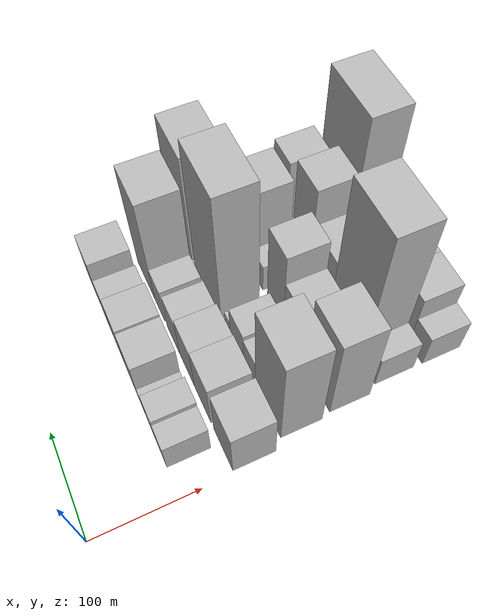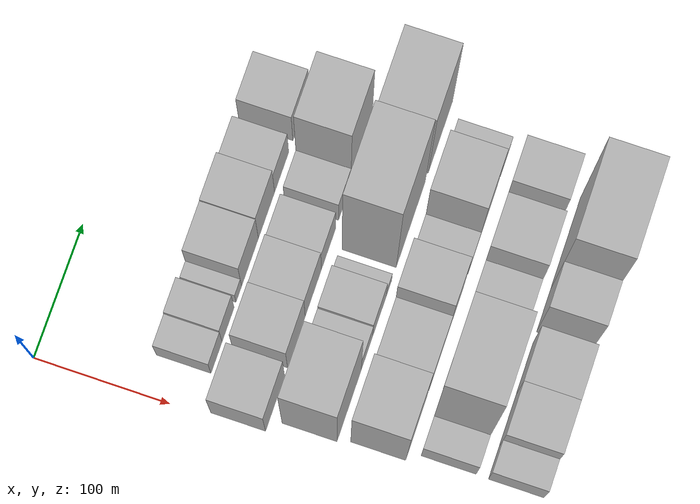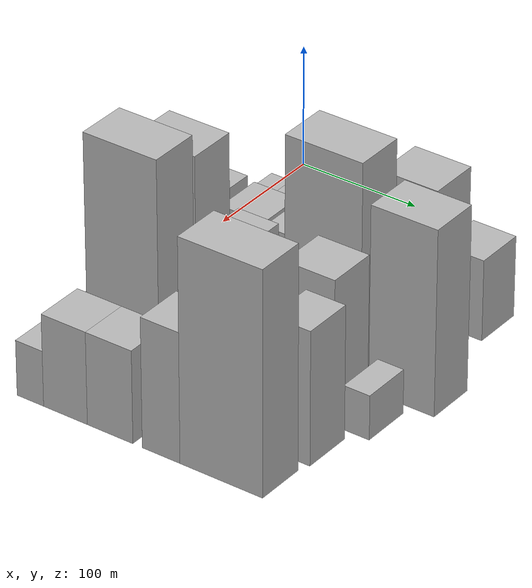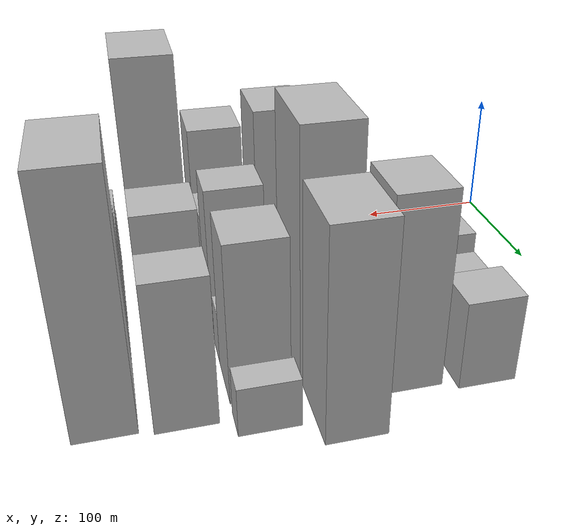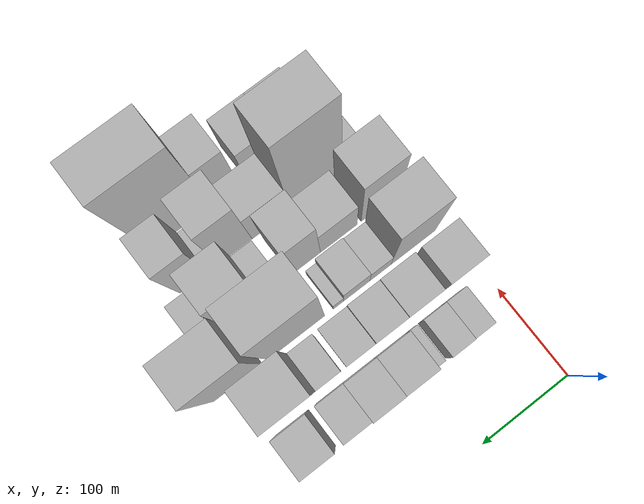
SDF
<sdf version="1.6">
 <world name="default">
  <model name="building_26">
   <static>1</static>
   <pose>100.0000 40.9273 0 0.000000 0.000000 0.000000</pose>
   <link name="link">
    <pose>0 0 21.00 0 0 0</pose>
    <collision name="collision"><geometry><box><size>40.0000 23.2941 42.0000</size></box></geometry></collision>
    <visual name="visual">
     <cast_shadows>0</cast_shadows>
     <geometry><box><size>40.0000 23.2941 42.0000</size></box></geometry>
     <material>
      <script>
       <uri>model://HANNAS_wall/materials/scripts</uri>
       <uri>model://HANNAS_wall/materials/textures</uri>
       <name>vrc/HANNAS_wall</name>
      </script>
     </material>
    </visual>
   </link>
  </model>
  <model name="building_27">
   <static>1</static>
   <pose>100.0000 65.3385 0 0.000000 0.000000 0.000000</pose>
   <link name="link">
    <pose>0 0 24.00 0 0 0</pose>
    <collision name="collision"><geometry><box><size>40.0000 25.5284 48.0000</size></box></geometry></collision>
    <visual name="visual">
     <cast_shadows>0</cast_shadows>
     <geometry><box><size>40.0000 25.5284 48.0000</size></box></geometry>
     <material>
      <script>
       <uri>model://HANNAS_wall/materials/scripts</uri>
       <uri>model://HANNAS_wall/materials/textures</uri>
       <name>vrc/HANNAS_wall</name>
      </script>
     </material>
    </visual>
   </link>
  </model>
  <model name="building_28">
   <static>1</static>
   <pose>100.0000 88.1129 0 0.000000 0.000000 0.000000</pose>
   <link name="link">
    <pose>0 0 13.50 0 0 0</pose>
    <collision name="collision"><geometry><box><size>40.0000 12.0204 27.0000</size></box></geometry></collision>
    <visual name="visual">
     <cast_shadows>0</cast_shadows>
     <geometry><box><size>40.0000 12.0204 27.0000</size></box></geometry>
     <material>
      <script>
       <uri>model://HANNAS_wall/materials/scripts</uri>
       <uri>model://HANNAS_wall/materials/textures</uri>
       <name>vrc/HANNAS_wall</name>
      </script>
     </material>
    </visual>
   </link>
  </model>
  <model name="building_29">
   <static>1</static>
   <pose>100.0000 112.0169 0 0.000000 0.000000 0.000000</pose>
   <link name="link">
    <pose>0 0 33.00 0 0 0</pose>
    <collision name="collision"><geometry><box><size>40.0000 35.7874 66.0000</size></box></geometry></collision>
    <visual name="visual">
     <cast_shadows>0</cast_shadows>
     <geometry><box><size>40.0000 35.7874 66.0000</size></box></geometry>
     <material>
      <script>
       <uri>model://HANNAS_wall/materials/scripts</uri>
       <uri>model://HANNAS_wall/materials/textures</uri>
       <name>vrc/HANNAS_wall</name>
      </script>
     </material>
    </visual>
   </link>
  </model>
  <model name="building_30">
   <static>1</static>
   <pose>100.0000 147.3166 0 0.000000 0.000000 0.000000</pose>
   <link name="link">
    <pose>0 0 34.50 0 0 0</pose>
    <collision name="collision"><geometry><box><size>40.0000 34.8121 69.0000</size></box></geometry></collision>
    <visual name="visual">
     <cast_shadows>0</cast_shadows>
     <geometry><box><size>40.0000 34.8121 69.0000</size></box></geometry>
     <material>
      <script>
       <uri>model://HANNAS_wall/materials/scripts</uri>
       <uri>model://HANNAS_wall/materials/textures</uri>
       <name>vrc/HANNAS_wall</name>
      </script>
     </material>
    </visual>
   </link>
  </model>
  <model name="building_31">
   <static>1</static>
   <pose>100.0000 180.0864 0 0.000000 0.000000 0.000000</pose>
   <link name="link">
    <pose>0 0 27.00 0 0 0</pose>
    <collision name="collision"><geometry><box><size>40.0000 30.7275 54.0000</size></box></geometry></collision>
    <visual name="visual">
     <cast_shadows>0</cast_shadows>
     <geometry><box><size>40.0000 30.7275 54.0000</size></box></geometry>
     <material>
      <script>
       <uri>model://HANNAS_wall/materials/scripts</uri>
       <uri>model://HANNAS_wall/materials/textures</uri>
       <name>vrc/HANNAS_wall</name>
      </script>
     </material>
    </visual>
   </link>
  </model>
  <model name="building_32">
   <static>1</static>
   <pose>100.0000 222.3811 0 0.000000 0.000000 0.000000</pose>
   <link name="link">
    <pose>0 0 33.00 0 0 0</pose>
    <collision name="collision"><geometry><box><size>40.0000 35.8618 66.0000</size></box></geometry></collision>
    <visual name="visual">
     <cast_shadows>0</cast_shadows>
     <geometry><box><size>40.0000 35.8618 66.0000</size></box></geometry>
     <material>
      <script>
       <uri>model://HANNAS_wall/materials/scripts</uri>
       <uri>model://HANNAS_wall/materials/textures</uri>
       <name>vrc/HANNAS_wall</name>
      </script>
     </material>
    </visual>
   </link>
  </model>
  <model name="building_75">
   <static>1</static>
   <pose>149.0000 23.5966 0 0.000000 0.000000 0.000000</pose>
   <link name="link">
    <pose>0 0 34.50 0 0 0</pose>
    <collision name="collision"><geometry><box><size>40.0000 40.5964 69.0000</size></box></geometry></collision>
    <visual name="visual">
     <cast_shadows>0</cast_shadows>
     <geometry><box><size>40.0000 40.5964 69.0000</size></box></geometry>
     <material>
      <script>
       <uri>model://HANNAS_wall/materials/scripts</uri>
       <uri>model://HANNAS_wall/materials/textures</uri>
       <name>vrc/HANNAS_wall</name>
      </script>
     </material>
    </visual>
   </link>
  </model>
  <model name="building_76">
   <static>1</static>
   <pose>149.0000 68.8350 0 0.000000 0.000000 0.000000</pose>
   <link name="link">
    <pose>0 0 33.00 0 0 0</pose>
    <collision name="collision"><geometry><box><size>40.0000 37.8805 66.0000</size></box></geometry></collision>
    <visual name="visual">
     <cast_shadows>0</cast_shadows>
     <geometry><box><size>40.0000 37.8805 66.0000</size></box></geometry>
     <material>
      <script>
       <uri>model://HANNAS_wall/materials/scripts</uri>
       <uri>model://HANNAS_wall/materials/textures</uri>
       <name>vrc/HANNAS_wall</name>
      </script>
     </material>
    </visual>
   </link>
  </model>
  <model name="building_77">
   <static>1</static>
   <pose>149.0000 105.3139 0 0.000000 0.000000 0.000000</pose>
   <link name="link">
    <pose>0 0 31.50 0 0 0</pose>
    <collision name="collision"><geometry><box><size>40.0000 35.0773 63.0000</size></box></geometry></collision>
    <visual name="visual">
     <cast_shadows>0</cast_shadows>
     <geometry><box><size>40.0000 35.0773 63.0000</size></box></geometry>
     <material>
      <script>
       <uri>model://HANNAS_wall/materials/scripts</uri>
       <uri>model://HANNAS_wall/materials/textures</uri>
       <name>vrc/HANNAS_wall</name>
      </script>
     </material>
    </visual>
   </link>
  </model>
  <model name="building_78">
   <static>1</static>
   <pose>149.0000 138.5867 0 0.000000 0.000000 0.000000</pose>
   <link name="link">
    <pose>0 0 27.00 0 0 0</pose>
    <collision name="collision"><geometry><box><size>40.0000 31.4684 54.0000</size></box></geometry></collision>
    <visual name="visual">
     <cast_shadows>0</cast_shadows>
     <geometry><box><size>40.0000 31.4684 54.0000</size></box></geometry>
     <material>
      <script>
       <uri>model://HANNAS_wall/materials/scripts</uri>
       <uri>model://HANNAS_wall/materials/textures</uri>
       <name>vrc/HANNAS_wall</name>
      </script>
     </material>
    </visual>
   </link>
  </model>
  <model name="building_79">
   <static>1</static>
   <pose>149.0000 173.7759 0 0.000000 0.000000 0.000000</pose>
   <link name="link">
    <pose>0 0 25.50 0 0 0</pose>
    <collision name="collision"><geometry><box><size>40.0000 26.9100 51.0000</size></box></geometry></collision>
    <visual name="visual">
     <cast_shadows>0</cast_shadows>
     <geometry><box><size>40.0000 26.9100 51.0000</size></box></geometry>
     <material>
      <script>
       <uri>model://HANNAS_wall/materials/scripts</uri>
       <uri>model://HANNAS_wall/materials/textures</uri>
       <name>vrc/HANNAS_wall</name>
      </script>
     </material>
    </visual>
   </link>
  </model>
  <model name="building_80">
   <static>1</static>
   <pose>149.0000 210.4363 0 0.000000 0.000000 0.000000</pose>
   <link name="link">
    <pose>0 0 72.00 0 0 0</pose>
    <collision name="collision"><geometry><box><size>40.0000 46.4108 144.0000</size></box></geometry></collision>
    <visual name="visual">
     <cast_shadows>0</cast_shadows>
     <geometry><box><size>40.0000 46.4108 144.0000</size></box></geometry>
     <material>
      <script>
       <uri>model://HANNAS_wall/materials/scripts</uri>
       <uri>model://HANNAS_wall/materials/textures</uri>
       <name>vrc/HANNAS_wall</name>
      </script>
     </material>
    </visual>
   </link>
  </model>
  <model name="building_122">
   <static>1</static>
   <pose>198.0000 38.3296 0 0.000000 0.000000 0.000000</pose>
   <link name="link">
    <pose>0 0 67.50 0 0 0</pose>
    <collision name="collision"><geometry><box><size>40.0000 52.1676 135.0000</size></box></geometry></collision>
    <visual name="visual">
     <cast_shadows>0</cast_shadows>
     <geometry><box><size>40.0000 52.1676 135.0000</size></box></geometry>
     <material>
      <script>
       <uri>model://HANNAS_wall/materials/scripts</uri>
       <uri>model://HANNAS_wall/materials/textures</uri>
       <name>vrc/HANNAS_wall</name>
      </script>
     </material>
    </visual>
   </link>
  </model>
  <model name="building_123">
   <static>1</static>
   <pose>198.0000 76.8443 0 0.000000 0.000000 0.000000</pose>
   <link name="link">
    <pose>0 0 22.50 0 0 0</pose>
    <collision name="collision"><geometry><box><size>40.0000 24.8618 45.0000</size></box></geometry></collision>
    <visual name="visual">
     <cast_shadows>0</cast_shadows>
     <geometry><box><size>40.0000 24.8618 45.0000</size></box></geometry>
     <material>
      <script>
       <uri>model://HANNAS_wall/materials/scripts</uri>
       <uri>model://HANNAS_wall/materials/textures</uri>
       <name>vrc/HANNAS_wall</name>
      </script>
     </material>
    </visual>
   </link>
  </model>
  <model name="building_124">
   <static>1</static>
   <pose>198.0000 104.3820 0 0.000000 0.000000 0.000000</pose>
   <link name="link">
    <pose>0 0 25.50 0 0 0</pose>
    <collision name="collision"><geometry><box><size>40.0000 30.2136 51.0000</size></box></geometry></collision>
    <visual name="visual">
     <cast_shadows>0</cast_shadows>
     <geometry><box><size>40.0000 30.2136 51.0000</size></box></geometry>
     <material>
      <script>
       <uri>model://HANNAS_wall/materials/scripts</uri>
       <uri>model://HANNAS_wall/materials/textures</uri>
       <name>vrc/HANNAS_wall</name>
      </script>
     </material>
    </visual>
   </link>
  </model>
  <model name="building_125">
   <static>1</static>
   <pose>198.0000 125.4242 0 0.000000 0.000000 0.000000</pose>
   <link name="link">
    <pose>0 0 13.50 0 0 0</pose>
    <collision name="collision"><geometry><box><size>40.0000 11.8709 27.0000</size></box></geometry></collision>
    <visual name="visual">
     <cast_shadows>0</cast_shadows>
     <geometry><box><size>40.0000 11.8709 27.0000</size></box></geometry>
     <material>
      <script>
       <uri>model://HANNAS_wall/materials/scripts</uri>
       <uri>model://HANNAS_wall/materials/textures</uri>
       <name>vrc/HANNAS_wall</name>
      </script>
     </material>
    </visual>
   </link>
  </model>
  <model name="building_126">
   <static>1</static>
   <pose>198.0000 173.5772 0 0.000000 0.000000 0.000000</pose>
   <link name="link">
    <pose>0 0 90.00 0 0 0</pose>
    <collision name="collision"><geometry><box><size>40.0000 64.4351 180.0000</size></box></geometry></collision>
    <visual name="visual">
     <cast_shadows>0</cast_shadows>
     <geometry><box><size>40.0000 64.4351 180.0000</size></box></geometry>
     <material>
      <script>
       <uri>model://HANNAS_wall/materials/scripts</uri>
       <uri>model://HANNAS_wall/materials/textures</uri>
       <name>vrc/HANNAS_wall</name>
      </script>
     </material>
    </visual>
   </link>
  </model>
  <model name="building_127">
   <static>1</static>
   <pose>198.0000 240.1357 0 0.000000 0.000000 0.000000</pose>
   <link name="link">
    <pose>0 0 75.00 0 0 0</pose>
    <collision name="collision"><geometry><box><size>40.0000 54.6819 150.0000</size></box></geometry></collision>
    <visual name="visual">
     <cast_shadows>0</cast_shadows>
     <geometry><box><size>40.0000 54.6819 150.0000</size></box></geometry>
     <material>
      <script>
       <uri>model://HANNAS_wall/materials/scripts</uri>
       <uri>model://HANNAS_wall/materials/textures</uri>
       <name>vrc/HANNAS_wall</name>
      </script>
     </material>
    </visual>
   </link>
  </model>
  <model name="building_169">
   <static>1</static>
   <pose>247.0000 37.9396 0 0.000000 0.000000 0.000000</pose>
   <link name="link">
    <pose>0 0 61.50 0 0 0</pose>
    <collision name="collision"><geometry><box><size>40.0000 45.5800 123.0000</size></box></geometry></collision>
    <visual name="visual">
     <cast_shadows>0</cast_shadows>
     <geometry><box><size>40.0000 45.5800 123.0000</size></box></geometry>
     <material>
      <script>
       <uri>model://HANNAS_wall/materials/scripts</uri>
       <uri>model://HANNAS_wall/materials/textures</uri>
       <name>vrc/HANNAS_wall</name>
      </script>
     </material>
    </visual>
   </link>
  </model>
  <model name="building_170">
   <static>1</static>
   <pose>247.0000 87.1228 0 0.000000 0.000000 0.000000</pose>
   <link name="link">
    <pose>0 0 37.50 0 0 0</pose>
    <collision name="collision"><geometry><box><size>40.0000 42.7863 75.0000</size></box></geometry></collision>
    <visual name="visual">
     <cast_shadows>0</cast_shadows>
     <geometry><box><size>40.0000 42.7863 75.0000</size></box></geometry>
     <material>
      <script>
       <uri>model://HANNAS_wall/materials/scripts</uri>
       <uri>model://HANNAS_wall/materials/textures</uri>
       <name>vrc/HANNAS_wall</name>
      </script>
     </material>
    </visual>
   </link>
  </model>
  <model name="building_171">
   <static>1</static>
   <pose>247.0000 125.6208 0 0.000000 0.000000 0.000000</pose>
   <link name="link">
    <pose>0 0 57.00 0 0 0</pose>
    <collision name="collision"><geometry><box><size>40.0000 34.2097 114.0000</size></box></geometry></collision>
    <visual name="visual">
     <cast_shadows>0</cast_shadows>
     <geometry><box><size>40.0000 34.2097 114.0000</size></box></geometry>
     <material>
      <script>
       <uri>model://HANNAS_wall/materials/scripts</uri>
       <uri>model://HANNAS_wall/materials/textures</uri>
       <name>vrc/HANNAS_wall</name>
      </script>
     </material>
    </visual>
   </link>
  </model>
  <model name="building_172">
   <static>1</static>
   <pose>247.0000 164.4055 0 0.000000 0.000000 0.000000</pose>
   <link name="link">
    <pose>0 0 19.50 0 0 0</pose>
    <collision name="collision"><geometry><box><size>40.0000 23.3596 39.0000</size></box></geometry></collision>
    <visual name="visual">
     <cast_shadows>0</cast_shadows>
     <geometry><box><size>40.0000 23.3596 39.0000</size></box></geometry>
     <material>
      <script>
       <uri>model://HANNAS_wall/materials/scripts</uri>
       <uri>model://HANNAS_wall/materials/textures</uri>
       <name>vrc/HANNAS_wall</name>
      </script>
     </material>
    </visual>
   </link>
  </model>
  <model name="building_173">
   <static>1</static>
   <pose>247.0000 197.2470 0 0.000000 0.000000 0.000000</pose>
   <link name="link">
    <pose>0 0 58.50 0 0 0</pose>
    <collision name="collision"><geometry><box><size>40.0000 42.3234 117.0000</size></box></geometry></collision>
    <visual name="visual">
     <cast_shadows>0</cast_shadows>
     <geometry><box><size>40.0000 42.3234 117.0000</size></box></geometry>
     <material>
      <script>
       <uri>model://HANNAS_wall/materials/scripts</uri>
       <uri>model://HANNAS_wall/materials/textures</uri>
       <name>vrc/HANNAS_wall</name>
      </script>
     </material>
    </visual>
   </link>
  </model>
  <model name="building_174">
   <static>1</static>
   <pose>247.0000 237.1742 0 0.000000 0.000000 0.000000</pose>
   <link name="link">
    <pose>0 0 18.00 0 0 0</pose>
    <collision name="collision"><geometry><box><size>40.0000 21.5310 36.0000</size></box></geometry></collision>
    <visual name="visual">
     <cast_shadows>0</cast_shadows>
     <geometry><box><size>40.0000 21.5310 36.0000</size></box></geometry>
     <material>
      <script>
       <uri>model://HANNAS_wall/materials/scripts</uri>
       <uri>model://HANNAS_wall/materials/textures</uri>
       <name>vrc/HANNAS_wall</name>
      </script>
     </material>
    </visual>
   </link>
  </model>
  <model name="building_216">
   <static>1</static>
   <pose>296.0000 33.2826 0 0.000000 0.000000 0.000000</pose>
   <link name="link">
    <pose>0 0 22.50 0 0 0</pose>
    <collision name="collision"><geometry><box><size>40.0000 23.3138 45.0000</size></box></geometry></collision>
    <visual name="visual">
     <cast_shadows>0</cast_shadows>
     <geometry><box><size>40.0000 23.3138 45.0000</size></box></geometry>
     <material>
      <script>
       <uri>model://HANNAS_wall/materials/scripts</uri>
       <uri>model://HANNAS_wall/materials/textures</uri>
       <name>vrc/HANNAS_wall</name>
      </script>
     </material>
    </visual>
   </link>
  </model>
  <model name="building_217">
   <static>1</static>
   <pose>296.0000 75.8683 0 0.000000 0.000000 0.000000</pose>
   <link name="link">
    <pose>0 0 97.50 0 0 0</pose>
    <collision name="collision"><geometry><box><size>40.0000 61.8577 195.0000</size></box></geometry></collision>
    <visual name="visual">
     <cast_shadows>0</cast_shadows>
     <geometry><box><size>40.0000 61.8577 195.0000</size></box></geometry>
     <material>
      <script>
       <uri>model://HANNAS_wall/materials/scripts</uri>
       <uri>model://HANNAS_wall/materials/textures</uri>
       <name>vrc/HANNAS_wall</name>
      </script>
     </material>
    </visual>
   </link>
  </model>
  <model name="building_218">
   <static>1</static>
   <pose>296.0000 128.8824 0 0.000000 0.000000 0.000000</pose>
   <link name="link">
    <pose>0 0 39.00 0 0 0</pose>
    <collision name="collision"><geometry><box><size>40.0000 44.1704 78.0000</size></box></geometry></collision>
    <visual name="visual">
     <cast_shadows>0</cast_shadows>
     <geometry><box><size>40.0000 44.1704 78.0000</size></box></geometry>
     <material>
      <script>
       <uri>model://HANNAS_wall/materials/scripts</uri>
       <uri>model://HANNAS_wall/materials/textures</uri>
       <name>vrc/HANNAS_wall</name>
      </script>
     </material>
    </visual>
   </link>
  </model>
  <model name="building_219">
   <static>1</static>
   <pose>296.0000 169.9615 0 0.000000 0.000000 0.000000</pose>
   <link name="link">
    <pose>0 0 63.00 0 0 0</pose>
    <collision name="collision"><geometry><box><size>40.0000 37.9879 126.0000</size></box></geometry></collision>
    <visual name="visual">
     <cast_shadows>0</cast_shadows>
     <geometry><box><size>40.0000 37.9879 126.0000</size></box></geometry>
     <material>
      <script>
       <uri>model://HANNAS_wall/materials/scripts</uri>
       <uri>model://HANNAS_wall/materials/textures</uri>
       <name>vrc/HANNAS_wall</name>
      </script>
     </material>
    </visual>
   </link>
  </model>
  <model name="building_220">
   <static>1</static>
   <pose>296.0000 195.0657 0 0.000000 0.000000 0.000000</pose>
   <link name="link">
    <pose>0 0 13.50 0 0 0</pose>
    <collision name="collision"><geometry><box><size>40.0000 12.2204 27.0000</size></box></geometry></collision>
    <visual name="visual">
     <cast_shadows>0</cast_shadows>
     <geometry><box><size>40.0000 12.2204 27.0000</size></box></geometry>
     <material>
      <script>
       <uri>model://HANNAS_wall/materials/scripts</uri>
       <uri>model://HANNAS_wall/materials/textures</uri>
       <name>vrc/HANNAS_wall</name>
      </script>
     </material>
    </visual>
   </link>
  </model>
  <model name="building_221">
   <static>1</static>
   <pose>296.0000 217.4576 0 0.000000 0.000000 0.000000</pose>
   <link name="link">
    <pose>0 0 54.00 0 0 0</pose>
    <collision name="collision"><geometry><box><size>40.0000 32.5634 108.0000</size></box></geometry></collision>
    <visual name="visual">
     <cast_shadows>0</cast_shadows>
     <geometry><box><size>40.0000 32.5634 108.0000</size></box></geometry>
     <material>
      <script>
       <uri>model://HANNAS_wall/materials/scripts</uri>
       <uri>model://HANNAS_wall/materials/textures</uri>
       <name>vrc/HANNAS_wall</name>
      </script>
     </material>
    </visual>
   </link>
  </model>
  <model name="building_267">
   <static>1</static>
   <pose>345.0000 32.7799 0 0.000000 0.000000 0.000000</pose>
   <link name="link">
    <pose>0 0 22.50 0 0 0</pose>
    <collision name="collision"><geometry><box><size>40.0000 23.1460 45.0000</size></box></geometry></collision>
    <visual name="visual">
     <cast_shadows>0</cast_shadows>
     <geometry><box><size>40.0000 23.1460 45.0000</size></box></geometry>
     <material>
      <script>
       <uri>model://HANNAS_wall/materials/scripts</uri>
       <uri>model://HANNAS_wall/materials/textures</uri>
       <name>vrc/HANNAS_wall</name>
      </script>
     </material>
    </visual>
   </link>
  </model>
  <model name="building_268">
   <static>1</static>
   <pose>345.0000 63.3272 0 0.000000 0.000000 0.000000</pose>
   <link name="link">
    <pose>0 0 37.50 0 0 0</pose>
    <collision name="collision"><geometry><box><size>40.0000 37.9487 75.0000</size></box></geometry></collision>
    <visual name="visual">
     <cast_shadows>0</cast_shadows>
     <geometry><box><size>40.0000 37.9487 75.0000</size></box></geometry>
     <material>
      <script>
       <uri>model://HANNAS_wall/materials/scripts</uri>
       <uri>model://HANNAS_wall/materials/textures</uri>
       <name>vrc/HANNAS_wall</name>
      </script>
     </material>
    </visual>
   </link>
  </model>
  <model name="building_269">
   <static>1</static>
   <pose>345.0000 101.8235 0 0.000000 0.000000 0.000000</pose>
   <link name="link">
    <pose>0 0 37.50 0 0 0</pose>
    <collision name="collision"><geometry><box><size>40.0000 39.0439 75.0000</size></box></geometry></collision>
    <visual name="visual">
     <cast_shadows>0</cast_shadows>
     <geometry><box><size>40.0000 39.0439 75.0000</size></box></geometry>
     <material>
      <script>
       <uri>model://HANNAS_wall/materials/scripts</uri>
       <uri>model://HANNAS_wall/materials/textures</uri>
       <name>vrc/HANNAS_wall</name>
      </script>
     </material>
    </visual>
   </link>
  </model>
  <model name="building_270">
   <static>1</static>
   <pose>345.0000 145.3133 0 0.000000 0.000000 0.000000</pose>
   <link name="link">
    <pose>0 0 52.50 0 0 0</pose>
    <collision name="collision"><geometry><box><size>40.0000 31.9358 105.0000</size></box></geometry></collision>
    <visual name="visual">
     <cast_shadows>0</cast_shadows>
     <geometry><box><size>40.0000 31.9358 105.0000</size></box></geometry>
     <material>
      <script>
       <uri>model://HANNAS_wall/materials/scripts</uri>
       <uri>model://HANNAS_wall/materials/textures</uri>
       <name>vrc/HANNAS_wall</name>
      </script>
     </material>
    </visual>
   </link>
  </model>
  <model name="building_271">
   <static>1</static>
   <pose>345.0000 195.8043 0 0.000000 0.000000 0.000000</pose>
   <link name="link">
    <pose>0 0 90.00 0 0 0</pose>
    <collision name="collision"><geometry><box><size>40.0000 69.0463 180.0000</size></box></geometry></collision>
    <visual name="visual">
     <cast_shadows>0</cast_shadows>
     <geometry><box><size>40.0000 69.0463 180.0000</size></box></geometry>
     <material>
      <script>
       <uri>model://HANNAS_wall/materials/scripts</uri>
       <uri>model://HANNAS_wall/materials/textures</uri>
       <name>vrc/HANNAS_wall</name>
      </script>
     </material>
    </visual>
   </link>
  </model>
 </world>
</sdf>
